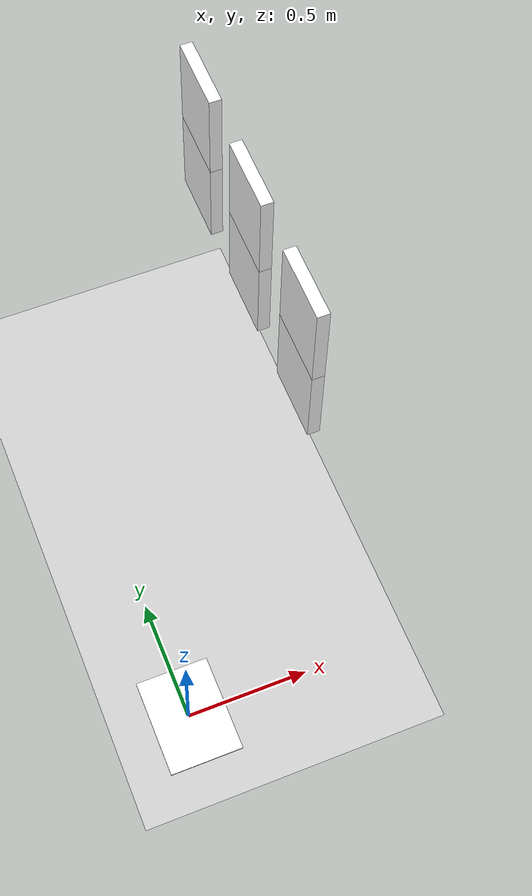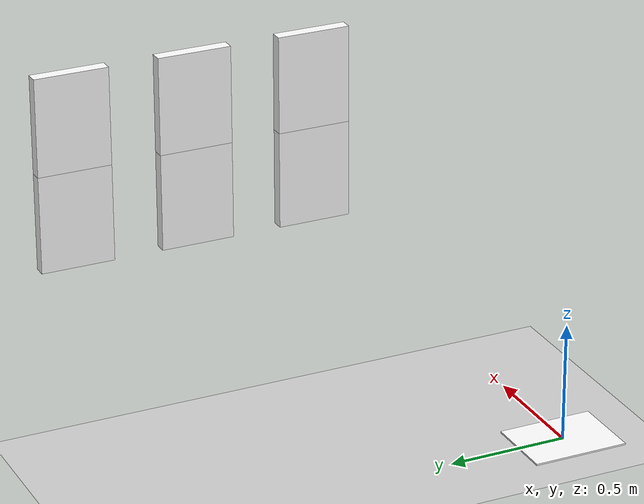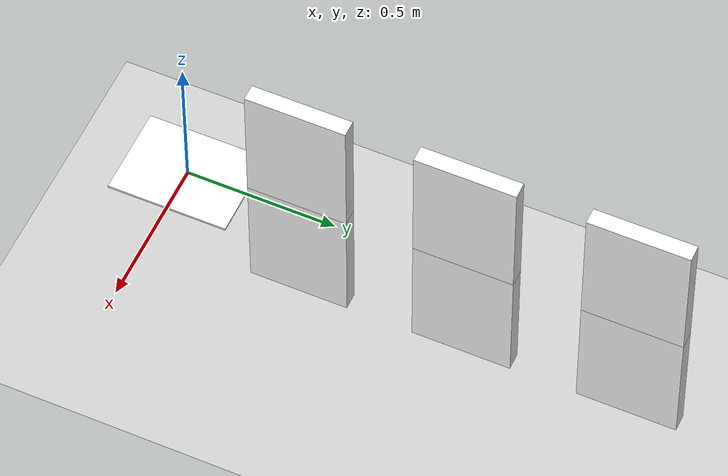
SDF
<sdf version="1.7">
 <world name="default">
  <light name="sun" type="directional">
   <pose>0 0 10 0 -0 0</pose>
   <diffuse>0.8 0.8 0.8 1</diffuse>
   <specular>0.2 0.2 0.2 1</specular>
   <attenuation>
    <range>1000</range>
    <constant>0.9</constant>
    <linear>0.01</linear>
    <quadratic>0.001</quadratic>
   </attenuation>
   <direction>-0.5 0.1 -0.9</direction>
   <spot><inner_angle>0</inner_angle><outer_angle>0</outer_angle><falloff>0</falloff></spot>
  </light>
  <gravity>0 0 -9.8</gravity>
  <magnetic_field>6e-06 2.3e-05 -4.2e-05</magnetic_field>
  <atmosphere type="adiabatic"/>
  <physics type="ode">
   <max_step_size>0.001</max_step_size>
   <real_time_factor>1</real_time_factor>
   <real_time_update_rate>1000</real_time_update_rate>
  </physics>
  <scene><ambient>0.4 0.4 0.4 1</ambient><background>0.7 0.7 0.7 1</background><shadows>1</shadows></scene>
  <spherical_coordinates>
   <surface_model>EARTH_WGS84</surface_model>
   <latitude_deg>0</latitude_deg>
   <longitude_deg>0</longitude_deg>
   <elevation>0</elevation>
   <heading_deg>0</heading_deg>
  </spherical_coordinates>
  <model name="Model1">
   <pose>0.75 0.75 1 0 -0 0</pose>
   <link name="Link1">
    <collision name="Collision1"><geometry><box><size>0.3 0.05 0.3</size></box></geometry></collision>
    <visual name="Visual1">
     <geometry><box><size>0.05 0.3 0.4</size></box></geometry>
     <material>
      <script>
       <uri>model://Untitled1/materials/scripts</uri>
       <uri>model://Untitled1/materials/textures</uri>
       <name>tag1</name>
      </script>
      <ambient>1 1 1 1</ambient>
     </material>
    </visual>
   </link>
   <static>1</static>
  </model>
  <model name="Model2">
   <pose>0.75 0.75 1.4 0 -0 0</pose>
   <link name="Link1">
    <collision name="Collision1"><geometry><box><size>0.3 0.05 0.3</size></box></geometry></collision>
    <visual name="Visual1">
     <geometry><box><size>0.05 0.3 0.4</size></box></geometry>
     <material>
      <script>
       <uri>model://Untitled1/materials/scripts</uri>
       <uri>model://Untitled1/materials/textures</uri>
       <name>tag2</name>
      </script>
      <ambient>1 1 1 1</ambient>
     </material>
    </visual>
   </link>
   <static>1</static>
  </model>
  <model name="Model3">
   <pose>0.75 1.25 1.4 0 -0 0</pose>
   <link name="Link1">
    <collision name="Collision1"><geometry><box><size>0.3 0.05 0.3</size></box></geometry></collision>
    <visual name="Visual1">
     <geometry><box><size>0.05 0.3 0.4</size></box></geometry>
     <material>
      <script>
       <uri>model://Untitled1/materials/scripts</uri>
       <uri>model://Untitled1/materials/textures</uri>
       <name>tag3</name>
      </script>
      <ambient>1 1 1 1</ambient>
     </material>
    </visual>
   </link>
   <static>1</static>
  </model>
  <model name="Model4">
   <pose>0.75 1.25 1 0 -0 0</pose>
   <link name="Link1">
    <collision name="Collision1"><geometry><box><size>0.3 0.05 0.3</size></box></geometry></collision>
    <visual name="Visual1">
     <geometry><box><size>0.05 0.3 0.4</size></box></geometry>
     <material>
      <script>
       <uri>model://Untitled1/materials/scripts</uri>
       <uri>model://Untitled1/materials/textures</uri>
       <name>tag4</name>
      </script>
      <ambient>1 1 1 1</ambient>
     </material>
    </visual>
   </link>
   <static>1</static>
  </model>
  <model name="Model5">
   <pose>0.75 1.75 1 0 -0 0</pose>
   <link name="Link1">
    <collision name="Collision1"><geometry><box><size>0.3 0.05 0.3</size></box></geometry></collision>
    <visual name="Visual1">
     <geometry><box><size>0.05 0.3 0.4</size></box></geometry>
     <material>
      <script>
       <uri>model://Untitled1/materials/scripts</uri>
       <uri>model://Untitled1/materials/textures</uri>
       <name>tag5</name>
      </script>
      <ambient>1 1 1 1</ambient>
     </material>
    </visual>
   </link>
   <static>1</static>
  </model>
  <model name="Model6">
   <pose>0.75 1.75 1.4 0 -0 0</pose>
   <link name="Link1">
    <collision name="Collision1"><geometry><box><size>0.3 0.05 0.3</size></box></geometry></collision>
    <visual name="Visual1">
     <geometry><box><size>0.05 0.3 0.4</size></box></geometry>
     <material>
      <script>
       <uri>model://Untitled1/materials/scripts</uri>
       <uri>model://Untitled1/materials/textures</uri>
       <name>tag6</name>
      </script>
      <ambient>1 1 1 1</ambient>
     </material>
    </visual>
   </link>
   <static>1</static>
  </model>
  <model name="Model0">
   <pose>0.001138 0 -0.021 1.57 1.57 -0.000102</pose>
   <link name="Link1">
    <collision name="Collision1"><geometry><box><size>0.3 0.05 0.3</size></box></geometry></collision>
    <visual name="Visual1">
     <geometry><box><size>0.05 0.3 0.4</size></box></geometry>
     <material>
      <script>
       <uri>model://Untitled1/materials/scripts</uri>
       <uri>model://Untitled1/materials/textures</uri>
       <name>tag0</name>
      </script>
      <ambient>1 1 1 1</ambient>
     </material>
    </visual>
   </link>
   <static>1</static>
  </model>
  <model name="ground_plane">
   <static>1</static>
   <link name="link">
    <collision name="collision">
     <geometry><plane><normal>0 0 1</normal><size>100 100</size></plane></geometry>
     <surface><friction><ode><mu>100</mu><mu2>50</mu2></ode></friction></surface>
    </collision>
    <visual name="visual">
     <cast_shadows>0</cast_shadows>
     <geometry><plane><normal>0 0 1</normal><size>100 100</size></plane></geometry>
     <material>
      <script><uri>file://media/materials/scripts/gazebo.material</uri><name>Gazebo/Grey</name></script>
     </material>
    </visual>
   </link>
   <pose>-0.174864 -0.783315 0 0 -0 0</pose>
  </model>
 </world>
</sdf>
